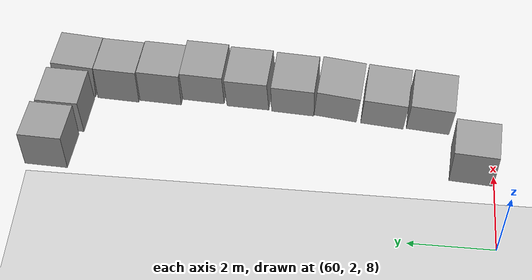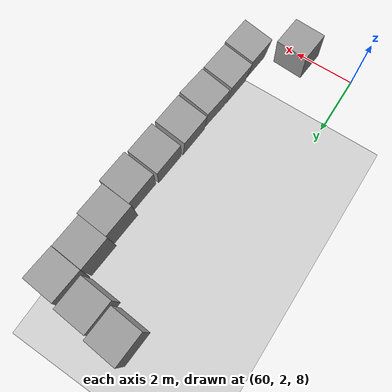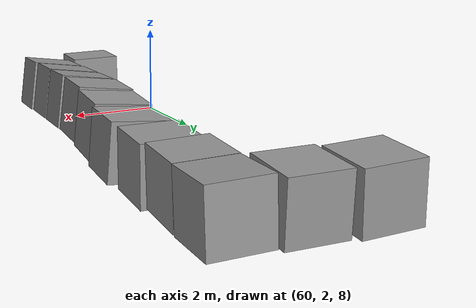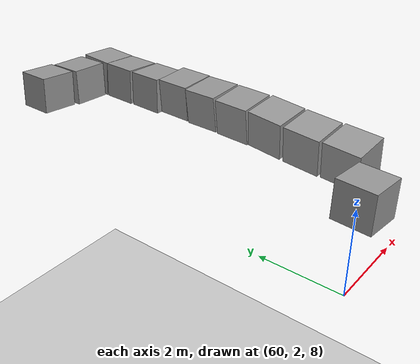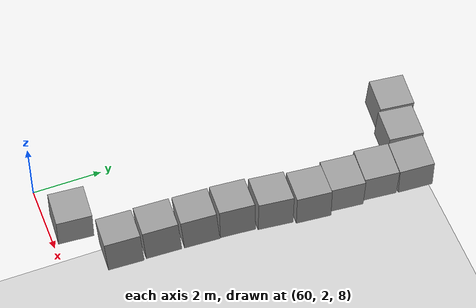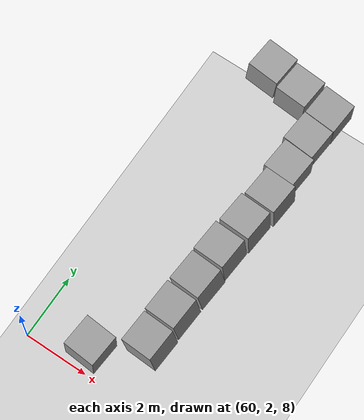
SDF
<sdf version="1.6">
 <world name="default">
  <model name="ground_plane">
   <static>1</static>
   <link name="link">
    <collision name="collision">
     <geometry><plane><normal>0 0 1</normal><size>100 100</size></plane></geometry>
     <surface>
      <contact><collide_bitmask>65535</collide_bitmask></contact>
      <friction><ode><mu>100</mu><mu2>50</mu2></ode></friction>
     </surface>
    </collision>
    <visual name="visual">
     <cast_shadows>0</cast_shadows>
     <geometry><plane><normal>0 0 1</normal><size>100 100</size></plane></geometry>
     <material>
      <script><uri>model://media/materials/scripts/gazebo.material</uri><name>Gazebo/Grey</name></script>
     </material>
    </visual>
   </link>
  </model>
  <model name="unit_box_0_clone_clone_5_clone_2_clone_16">
   <pose>63.5557 8.88397 9.21975 -0.024053 -0.074124 -0.070389</pose>
   <link name="link">
    <inertial>
     <mass>1</mass>
     <inertia>
      <ixx>0.166667</ixx>
      <ixy>0</ixy>
      <ixz>0</ixz>
      <iyy>0.166667</iyy>
      <iyz>0</iyz>
      <izz>0.166667</izz>
     </inertia>
    </inertial>
    <collision name="collision"><geometry><box><size>1 1 1</size></box></geometry></collision>
    <visual name="visual">
     <geometry><box><size>1 1 1</size></box></geometry>
     <material>
      <script><name>Gazebo/Grey</name><uri>model://media/materials/scripts/gazebo.material</uri></script>
     </material>
    </visual>
   </link>
  </model>
  <model name="unit_box_0_clone_clone_5_clone_2_clone_16_clone">
   <pose>63.4192 7.82116 9.26519 -0.04298 -0.095834 -0.073607</pose>
   <link name="link">
    <inertial>
     <mass>1</mass>
     <inertia>
      <ixx>0.166667</ixx>
      <ixy>0</ixy>
      <ixz>0</ixz>
      <iyy>0.166667</iyy>
      <iyz>0</iyz>
      <izz>0.166667</izz>
     </inertia>
    </inertial>
    <collision name="collision"><geometry><box><size>1 1 1</size></box></geometry></collision>
    <visual name="visual">
     <geometry><box><size>1 1 1</size></box></geometry>
     <material>
      <script><name>Gazebo/Grey</name><uri>model://media/materials/scripts/gazebo.material</uri></script>
     </material>
    </visual>
   </link>
  </model>
  <model name="unit_box_0_clone_clone_5_clone_2_clone_16_clone_0">
   <pose>63.3074 6.74529 9.30209 -0.009325 -0.121154 -0.067689</pose>
   <link name="link">
    <inertial>
     <mass>1</mass>
     <inertia>
      <ixx>0.166667</ixx>
      <ixy>0</ixy>
      <ixz>0</ixz>
      <iyy>0.166667</iyy>
      <iyz>0</iyz>
      <izz>0.166667</izz>
     </inertia>
    </inertial>
    <collision name="collision"><geometry><box><size>1 1 1</size></box></geometry></collision>
    <visual name="visual">
     <geometry><box><size>1 1 1</size></box></geometry>
     <material>
      <script><name>Gazebo/Grey</name><uri>model://media/materials/scripts/gazebo.material</uri></script>
     </material>
    </visual>
   </link>
  </model>
  <model name="unit_box_0_clone_clone_5_clone_2_clone_16_clone_1">
   <pose>63.2538 5.70484 9.28665 0.055892 -0.135657 -0.091232</pose>
   <link name="link">
    <inertial>
     <mass>1</mass>
     <inertia>
      <ixx>0.166667</ixx>
      <ixy>0</ixy>
      <ixz>0</ixz>
      <iyy>0.166667</iyy>
      <iyz>0</iyz>
      <izz>0.166667</izz>
     </inertia>
    </inertial>
    <collision name="collision"><geometry><box><size>1 1 1</size></box></geometry></collision>
    <visual name="visual">
     <geometry><box><size>1 1 1</size></box></geometry>
     <material>
      <script><name>Gazebo/Grey</name><uri>model://media/materials/scripts/gazebo.material</uri></script>
     </material>
    </visual>
   </link>
  </model>
  <model name="unit_box_0_clone_clone_5_clone_2_clone_16_clone_2">
   <pose>63.1738 4.62657 9.23314 0.043713 -0.13876 -0.069372</pose>
   <link name="link">
    <inertial>
     <mass>1</mass>
     <inertia>
      <ixx>0.166667</ixx>
      <ixy>0</ixy>
      <ixz>0</ixz>
      <iyy>0.166667</iyy>
      <iyz>0</iyz>
      <izz>0.166667</izz>
     </inertia>
    </inertial>
    <collision name="collision"><geometry><box><size>1 1 1</size></box></geometry></collision>
    <visual name="visual">
     <geometry><box><size>1 1 1</size></box></geometry>
     <material>
      <script><name>Gazebo/Grey</name><uri>model://media/materials/scripts/gazebo.material</uri></script>
     </material>
    </visual>
   </link>
  </model>
  <model name="unit_box_0_clone_clone_5_clone_2_clone_16_clone_3">
   <pose>63.1374 3.5606 9.19277 0.038659 -0.13594 -0.069385</pose>
   <link name="link">
    <inertial>
     <mass>1</mass>
     <inertia>
      <ixx>0.166667</ixx>
      <ixy>0</ixy>
      <ixz>0</ixz>
      <iyy>0.166667</iyy>
      <iyz>0</iyz>
      <izz>0.166667</izz>
     </inertia>
    </inertial>
    <collision name="collision"><geometry><box><size>1 1 1</size></box></geometry></collision>
    <visual name="visual">
     <geometry><box><size>1 1 1</size></box></geometry>
     <material>
      <script><name>Gazebo/Grey</name><uri>model://media/materials/scripts/gazebo.material</uri></script>
     </material>
    </visual>
   </link>
  </model>
  <model name="unit_box_0_clone_clone_5_clone_2_clone_16_clone_5">
   <pose>63.4919 9.89004 9.15979 -0.023986 0.011075 -0.072437</pose>
   <link name="link">
    <inertial>
     <mass>1</mass>
     <inertia>
      <ixx>0.166667</ixx>
      <ixy>0</ixy>
      <ixz>0</ixz>
      <iyy>0.166667</iyy>
      <iyz>0</iyz>
      <izz>0.166667</izz>
     </inertia>
    </inertial>
    <collision name="collision"><geometry><box><size>1 1 1</size></box></geometry></collision>
    <visual name="visual">
     <geometry><box><size>1 1 1</size></box></geometry>
     <material>
      <script><name>Gazebo/Grey</name><uri>model://media/materials/scripts/gazebo.material</uri></script>
     </material>
    </visual>
   </link>
  </model>
  <model name="unit_box_0_clone_clone_5_clone_2_clone_16_clone_6">
   <pose>63.4792 10.8941 9.16946 -0.023977 0.033766 -0.072983</pose>
   <link name="link">
    <inertial>
     <mass>1</mass>
     <inertia>
      <ixx>0.166667</ixx>
      <ixy>0</ixy>
      <ixz>0</ixz>
      <iyy>0.166667</iyy>
      <iyz>0</iyz>
      <izz>0.166667</izz>
     </inertia>
    </inertial>
    <collision name="collision"><geometry><box><size>1 1 1</size></box></geometry></collision>
    <visual name="visual">
     <geometry><box><size>1 1 1</size></box></geometry>
     <material>
      <script><name>Gazebo/Grey</name><uri>model://media/materials/scripts/gazebo.material</uri></script>
     </material>
    </visual>
   </link>
  </model>
  <model name="unit_box_0_clone_clone_5_clone_2_clone_16_clone_7">
   <pose>63.5621 11.9227 9.16847 0.023383 0.03088 -0.070925</pose>
   <link name="link">
    <inertial>
     <mass>1</mass>
     <inertia>
      <ixx>0.166667</ixx>
      <ixy>0</ixy>
      <ixz>0</ixz>
      <iyy>0.166667</iyy>
      <iyz>0</iyz>
      <izz>0.166667</izz>
     </inertia>
    </inertial>
    <collision name="collision"><geometry><box><size>1 1 1</size></box></geometry></collision>
    <visual name="visual">
     <geometry><box><size>1 1 1</size></box></geometry>
     <material>
      <script><name>Gazebo/Grey</name><uri>model://media/materials/scripts/gazebo.material</uri></script>
     </material>
    </visual>
   </link>
  </model>
  <model name="unit_box_0_clone_clone_5_clone_2_clone_16_clone_7_clone">
   <pose>62.4828 12.0414 9.17146 -0.051073 0.010593 -0.071784</pose>
   <link name="link">
    <inertial>
     <mass>1</mass>
     <inertia>
      <ixx>0.166667</ixx>
      <ixy>0</ixy>
      <ixz>0</ixz>
      <iyy>0.166667</iyy>
      <iyz>0</iyz>
      <izz>0.166667</izz>
     </inertia>
    </inertial>
    <collision name="collision"><geometry><box><size>1 1 1</size></box></geometry></collision>
    <visual name="visual">
     <geometry><box><size>1 1 1</size></box></geometry>
     <material>
      <script><name>Gazebo/Grey</name><uri>model://media/materials/scripts/gazebo.material</uri></script>
     </material>
    </visual>
   </link>
  </model>
  <model name="unit_box_0_clone_clone_5_clone_2_clone_16_clone_7_clone_0">
   <pose>61.4168 12.2114 9.2032 -0.046033 0.05001 -0.073536</pose>
   <link name="link">
    <inertial>
     <mass>1</mass>
     <inertia>
      <ixx>0.166667</ixx>
      <ixy>0</ixy>
      <ixz>0</ixz>
      <iyy>0.166667</iyy>
      <iyz>0</iyz>
      <izz>0.166667</izz>
     </inertia>
    </inertial>
    <collision name="collision"><geometry><box><size>1 1 1</size></box></geometry></collision>
    <visual name="visual">
     <geometry><box><size>1 1 1</size></box></geometry>
     <material>
      <script><name>Gazebo/Grey</name><uri>model://media/materials/scripts/gazebo.material</uri></script>
     </material>
    </visual>
   </link>
  </model>
  <model name="unit_box_0_clone_clone_5_clone_2_clone_16_clone_7_clone_3">
   <pose>61.8434 2.58765 9.10226 0.002457 0.02593 -0.073137</pose>
   <link name="link">
    <inertial>
     <mass>1</mass>
     <inertia>
      <ixx>0.166667</ixx>
      <ixy>0</ixy>
      <ixz>0</ixz>
      <iyy>0.166667</iyy>
      <iyz>0</iyz>
      <izz>0.166667</izz>
     </inertia>
    </inertial>
    <collision name="collision"><geometry><box><size>1 1 1</size></box></geometry></collision>
    <visual name="visual">
     <geometry><box><size>1 1 1</size></box></geometry>
     <material>
      <script><name>Gazebo/Grey</name><uri>model://media/materials/scripts/gazebo.material</uri></script>
     </material>
    </visual>
   </link>
  </model>
 </world>
</sdf>
